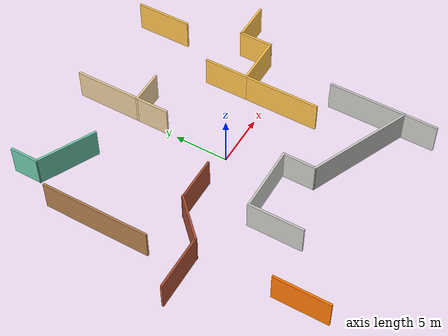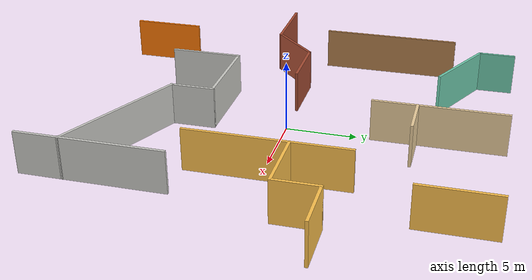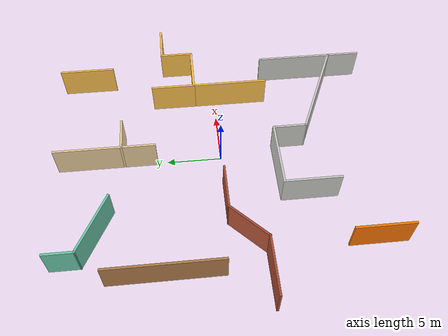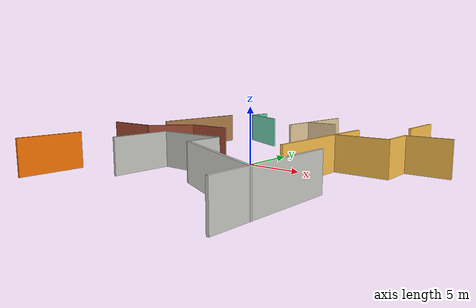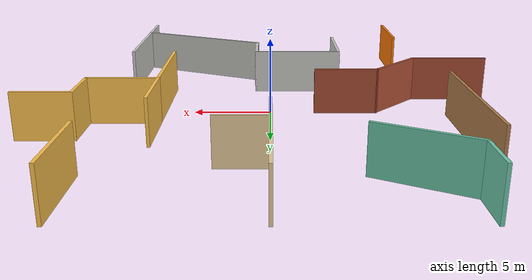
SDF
<?xml version='1.0'?>
<sdf version='1.7'>
  <model name='Maze30'>
    <pose>0 0 0 0 -0 0</pose>
    <link name='Wall_11'>
      <collision name='Wall_11_Collision'>
        <geometry>
          <box>
            <size>5.79017 0.2 3</size>
          </box>
        </geometry>
        <pose>0 0 1.5 0 -0 0</pose>
      </collision>
      <visual name='Wall_11_Visual'>
        <pose>0 0 1.5 0 -0 0</pose>
        <geometry>
          <box>
            <size>5.79017 0.2 3</size>
          </box>
        </geometry>
        <material>
          <script>
            <uri>file://media/materials/scripts/gazebo.material</uri>
            <name>Gazebo/Grey</name>
          </script>
          <ambient>0.435294 0.796078 0.67451 1</ambient>
        </material>
        <meta>
          <layer>0</layer>
        </meta>
      </visual>
      <pose>-7.5 11.25 0 0 -0 -0.463648</pose>
    </link>
    <link name='Wall_13'>
      <collision name='Wall_13_Collision'>
        <geometry>
          <box>
            <size>5.2 0.2 3</size>
          </box>
        </geometry>
        <pose>0 0 1.5 0 -0 0</pose>
      </collision>
      <visual name='Wall_13_Visual'>
        <pose>0 0 1.5 0 -0 0</pose>
        <geometry>
          <box>
            <size>5.2 0.2 3</size>
          </box>
        </geometry>
        <material>
          <script>
            <uri>file://media/materials/scripts/gazebo.material</uri>
            <name>Gazebo/Grey</name>
          </script>
          <ambient>0.996078 0.47451 0.0196078 1</ambient>
        </material>
        <meta>
          <layer>0</layer>
        </meta>
      </visual>
      <pose>-10 -12.5 0 0 -0 -1.5708</pose>
    </link>
    <link name='Wall_15'>
      <collision name='Wall_15_Collision'>
        <geometry>
          <box>
            <size>10.0489 0.2 3</size>
          </box>
        </geometry>
        <pose>0 0 1.5 0 -0 0</pose>
      </collision>
      <visual name='Wall_15_Visual'>
        <pose>0 0 1.5 0 -0 0</pose>
        <geometry>
          <box>
            <size>10.0489 0.2 3</size>
          </box>
        </geometry>
        <material>
          <script>
            <uri>file://media/materials/scripts/gazebo.material</uri>
            <name>Gazebo/CeilingTiled</name>
          </script>
          <ambient>0.760784 0.662745 0.627451 1</ambient>
        </material>
        <meta>
          <layer>0</layer>
        </meta>
      </visual>
      <pose>5.5 -10 0 0 -0 -0.418224</pose>
    </link>
    <link name='Wall_16'>
      <collision name='Wall_16_Collision'>
        <geometry>
          <box>
            <size>3.2 0.2 3</size>
          </box>
        </geometry>
        <pose>0 0 1.5 0 -0 0</pose>
      </collision>
      <visual name='Wall_16_Visual'>
        <pose>0 0 1.5 0 -0 0</pose>
        <geometry>
          <box>
            <size>3.2 0.2 3</size>
          </box>
        </geometry>
        <material>
          <script>
            <uri>file://media/materials/scripts/gazebo.material</uri>
            <name>Gazebo/CeilingTiled</name>
          </script>
          <ambient>0.760784 0.662745 0.627451 1</ambient>
        </material>
        <meta>
          <layer>0</layer>
        </meta>
      </visual>
      <pose>10 -13.5 0 0 -0 -1.5708</pose>
    </link>
    <link name='Wall_18'>
      <collision name='Wall_18_Collision'>
        <geometry>
          <box>
            <size>4.2 0.2 3</size>
          </box>
        </geometry>
        <pose>0 0 1.5 0 -0 0</pose>
      </collision>
      <visual name='Wall_18_Visual'>
        <pose>0 0 1.5 0 -0 0</pose>
        <geometry>
          <box>
            <size>4.2 0.2 3</size>
          </box>
        </geometry>
        <material>
          <script>
            <uri>file://media/materials/scripts/gazebo.material</uri>
            <name>Gazebo/Grey</name>
          </script>
          <ambient>1 0.764706 0.305882 1</ambient>
        </material>
        <meta>
          <layer>0</layer>
        </meta>
      </visual>
      <pose>7 4 0 0 -0 -1.5708</pose>
    </link>
    <link name='Wall_19'>
      <collision name='Wall_19_Collision'>
        <geometry>
          <box>
            <size>4.7 0.2 3</size>
          </box>
        </geometry>
        <pose>0 0 1.5 0 -0 0</pose>
      </collision>
      <visual name='Wall_19_Visual'>
        <pose>0 0 1.5 0 -0 0</pose>
        <geometry>
          <box>
            <size>4.7 0.2 3</size>
          </box>
        </geometry>
        <material>
          <script>
            <uri>file://media/materials/scripts/gazebo.material</uri>
            <name>Gazebo/Grey</name>
          </script>
          <ambient>1 0.764706 0.305882 1</ambient>
        </material>
        <meta>
          <layer>0</layer>
        </meta>
      </visual>
      <pose>9.25 2 0 0 -0 0</pose>
    </link>
    <link name='Wall_20'>
      <collision name='Wall_20_Collision'>
        <geometry>
          <box>
            <size>3.2 0.2 3</size>
          </box>
        </geometry>
        <pose>0 0 1.5 0 -0 0</pose>
      </collision>
      <visual name='Wall_20_Visual'>
        <pose>0 0 1.5 0 -0 0</pose>
        <geometry>
          <box>
            <size>3.2 0.2 3</size>
          </box>
        </geometry>
        <material>
          <script>
            <uri>file://media/materials/scripts/gazebo.material</uri>
            <name>Gazebo/Grey</name>
          </script>
          <ambient>1 0.764706 0.305882 1</ambient>
        </material>
        <meta>
          <layer>0</layer>
        </meta>
      </visual>
      <pose>11.5 3.5 0 0 -0 1.5708</pose>
    </link>
    <link name='Wall_21'>
      <collision name='Wall_21_Collision'>
        <geometry>
          <box>
            <size>3.7 0.2 3</size>
          </box>
        </geometry>
        <pose>0 0 1.5 0 -0 0</pose>
      </collision>
      <visual name='Wall_21_Visual'>
        <pose>0 0 1.5 0 -0 0</pose>
        <geometry>
          <box>
            <size>3.7 0.2 3</size>
          </box>
        </geometry>
        <material>
          <script>
            <uri>file://media/materials/scripts/gazebo.material</uri>
            <name>Gazebo/Grey</name>
          </script>
          <ambient>1 0.764706 0.305882 1</ambient>
        </material>
        <meta>
          <layer>0</layer>
        </meta>
      </visual>
      <pose>13.25 5 0 0 -0 0</pose>
    </link>
    <link name='Wall_23'>
      <collision name='Wall_23_Collision'>
        <geometry>
          <box>
            <size>9.2 0.2 3</size>
          </box>
        </geometry>
        <pose>0 0 1.5 0 -0 0</pose>
      </collision>
      <visual name='Wall_23_Visual'>
        <pose>0 0 1.5 0 -0 0</pose>
        <geometry>
          <box>
            <size>9.2 0.2 3</size>
          </box>
        </geometry>
        <material>
          <script>
            <uri>file://media/materials/scripts/gazebo.material</uri>
            <name>Gazebo/Grey</name>
          </script>
          <ambient>0.921569 0.807843 0.615686 1</ambient>
        </material>
        <meta>
          <layer>0</layer>
        </meta>
      </visual>
      <pose>0 10.5 0 0 -0 1.5708</pose>
    </link>
    <link name='Wall_25'>
      <collision name='Wall_25_Collision'>
        <geometry>
          <box>
            <size>3.2 0.2 3</size>
          </box>
        </geometry>
        <pose>0 0 1.5 0 -0 0</pose>
      </collision>
      <visual name='Wall_25_Visual'>
        <pose>0 0 1.5 0 -0 0</pose>
        <geometry>
          <box>
            <size>3.2 0.2 3</size>
          </box>
        </geometry>
        <material>
          <script>
            <uri>file://media/materials/scripts/gazebo.material</uri>
            <name>Gazebo/Grey</name>
          </script>
          <ambient>0.921569 0.807843 0.615686 1</ambient>
        </material>
        <meta>
          <layer>0</layer>
        </meta>
      </visual>
      <pose>1.5 9 0 0 -0 0</pose>
    </link>
    <link name='Wall_27'>
      <collision name='Wall_27_Collision'>
        <geometry>
          <box>
            <size>5.2 0.2 3</size>
          </box>
        </geometry>
        <pose>0 0 1.5 0 -0 0</pose>
      </collision>
      <visual name='Wall_27_Visual'>
        <pose>0 0 1.5 0 -0 0</pose>
        <geometry>
          <box>
            <size>5.2 0.2 3</size>
          </box>
        </geometry>
        <material>
          <script>
            <uri>file://media/materials/scripts/gazebo.material</uri>
            <name>Gazebo/Grey</name>
          </script>
          <ambient>1 0.764706 0.305882 1</ambient>
        </material>
        <meta>
          <layer>0</layer>
        </meta>
      </visual>
      <pose>10 12.5 0 0 -0 -1.5708</pose>
    </link>
    <link name='Wall_29'>
      <collision name='Wall_29_Collision'>
        <geometry>
          <box>
            <size>5.2 0.2 3</size>
          </box>
        </geometry>
        <pose>0 0 1.5 0 -0 0</pose>
      </collision>
      <visual name='Wall_29_Visual'>
        <pose>0 0 1.5 0 -0 0</pose>
        <geometry>
          <box>
            <size>5.2 0.2 3</size>
          </box>
        </geometry>
        <material>
          <script>
            <uri>file://media/materials/scripts/gazebo.material</uri>
            <name>Gazebo/CeilingTiled</name>
          </script>
          <ambient>0.760784 0.662745 0.627451 1</ambient>
        </material>
        <meta>
          <layer>0</layer>
        </meta>
      </visual>
      <pose>-5 -7.5 0 0 -0 1.5708</pose>
    </link>
    <link name='Wall_30'>
      <collision name='Wall_30_Collision'>
        <geometry>
          <box>
            <size>6.2 0.2 3</size>
          </box>
        </geometry>
        <pose>0 0 1.5 0 -0 0</pose>
      </collision>
      <visual name='Wall_30_Visual'>
        <pose>0 0 1.5 0 -0 0</pose>
        <geometry>
          <box>
            <size>6.2 0.2 3</size>
          </box>
        </geometry>
        <material>
          <script>
            <uri>file://media/materials/scripts/gazebo.material</uri>
            <name>Gazebo/CeilingTiled</name>
          </script>
          <ambient>0.760784 0.662745 0.627451 1</ambient>
        </material>
        <meta>
          <layer>0</layer>
        </meta>
      </visual>
      <pose>-2 -5 0 0 -0 0</pose>
    </link>
    <link name='Wall_31'>
      <collision name='Wall_31_Collision'>
        <geometry>
          <box>
            <size>3.2 0.2 3</size>
          </box>
        </geometry>
        <pose>0 0 1.5 0 -0 0</pose>
      </collision>
      <visual name='Wall_31_Visual'>
        <pose>0 0 1.5 0 -0 0</pose>
        <geometry>
          <box>
            <size>3.2 0.2 3</size>
          </box>
        </geometry>
        <material>
          <script>
            <uri>file://media/materials/scripts/gazebo.material</uri>
            <name>Gazebo/CeilingTiled</name>
          </script>
          <ambient>0.760784 0.662745 0.627451 1</ambient>
        </material>
        <meta>
          <layer>0</layer>
        </meta>
      </visual>
      <pose>1 -6.5 0 0 -0 -1.5708</pose>
    </link>
    <link name='Wall_33'>
      <collision name='Wall_33_Collision'>
        <geometry>
          <box>
            <size>10.05 0.2 3</size>
          </box>
        </geometry>
        <pose>0 0 1.5 0 -0 0</pose>
      </collision>
      <visual name='Wall_33_Visual'>
        <pose>0 0 1.5 0 -0 0</pose>
        <geometry>
          <box>
            <size>10.05 0.2 3</size>
          </box>
        </geometry>
        <material>
          <script>
            <uri>file://media/materials/scripts/gazebo.material</uri>
            <name>Gazebo/Wood</name>
          </script>
          <ambient>1 1 1 1</ambient>
        </material>
        <meta>
          <layer>0</layer>
        </meta>
      </visual>
      <pose>-11.671 5.53736 0 0 -0 -1.5708</pose>
    </link>
    <link name='Wall_35'>
      <collision name='Wall_35_Collision'>
        <geometry>
          <box>
            <size>7.2 0.2 3</size>
          </box>
        </geometry>
        <pose>0 0 1.5 0 -0 0</pose>
      </collision>
      <visual name='Wall_35_Visual'>
        <pose>0 0 1.5 0 -0 0</pose>
        <geometry>
          <box>
            <size>7.2 0.2 3</size>
          </box>
        </geometry>
        <material>
          <script>
            <uri>file://media/materials/scripts/gazebo.material</uri>
            <name>Gazebo/Grey</name>
          </script>
          <ambient>1 0.764706 0.305882 1</ambient>
        </material>
        <meta>
          <layer>0</layer>
        </meta>
      </visual>
      <pose>7 -1.5 0 0 -0 -1.5708</pose>
    </link>
    <link name='Wall_39'>
      <collision name='Wall_39_Collision'>
        <geometry>
          <box>
            <size>7.2 0.2 3</size>
          </box>
        </geometry>
        <pose>0 0 1.5 0 -0 0</pose>
      </collision>
      <visual name='Wall_39_Visual'>
        <pose>0 0 1.5 0 -0 0</pose>
        <geometry>
          <box>
            <size>7.2 0.2 3</size>
          </box>
        </geometry>
        <material>
          <script>
            <uri>file://media/materials/scripts/gazebo.material</uri>
            <name>Gazebo/CeilingTiled</name>
          </script>
          <ambient>0.760784 0.662745 0.627451 1</ambient>
        </material>
        <meta>
          <layer>0</layer>
        </meta>
      </visual>
      <pose>10 -8.5 0 0 -0 1.5708</pose>
    </link>
    <link name='Wall_4'>
      <collision name='Wall_4_Collision'>
        <geometry>
          <box>
            <size>5.2 0.2 3</size>
          </box>
        </geometry>
        <pose>0 0 1.5 0 -0 0</pose>
      </collision>
      <visual name='Wall_4_Visual'>
        <pose>0 0 1.5 0 -0 0</pose>
        <geometry>
          <box>
            <size>5.2 0.2 3</size>
          </box>
        </geometry>
        <material>
          <script>
            <uri>file://media/materials/scripts/gazebo.material</uri>
            <name>Gazebo/Bricks</name>
          </script>
          <ambient>1 1 1 1</ambient>
        </material>
        <meta>
          <layer>0</layer>
        </meta>
      </visual>
      <pose>-12.5 -3 0 0 -0 0</pose>
    </link>
    <link name='Wall_6'>
      <collision name='Wall_6_Collision'>
        <geometry>
          <box>
            <size>4.44264 0.2 3</size>
          </box>
        </geometry>
        <pose>0 0 1.5 0 -0 0</pose>
      </collision>
      <visual name='Wall_6_Visual'>
        <pose>0 0 1.5 0 -0 0</pose>
        <geometry>
          <box>
            <size>4.44264 0.2 3</size>
          </box>
        </geometry>
        <material>
          <script>
            <uri>file://media/materials/scripts/gazebo.material</uri>
            <name>Gazebo/Bricks</name>
          </script>
          <ambient>1 1 1 1</ambient>
        </material>
        <meta>
          <layer>0</layer>
        </meta>
      </visual>
      <pose>-8.5 -1.5 0 0 -0 0.785398</pose>
    </link>
    <link name='Wall_7'>
      <collision name='Wall_7_Collision'>
        <geometry>
          <box>
            <size>4.2 0.2 3</size>
          </box>
        </geometry>
        <pose>0 0 1.5 0 -0 0</pose>
      </collision>
      <visual name='Wall_7_Visual'>
        <pose>0 0 1.5 0 -0 0</pose>
        <geometry>
          <box>
            <size>4.2 0.2 3</size>
          </box>
        </geometry>
        <material>
          <script>
            <uri>file://media/materials/scripts/gazebo.material</uri>
            <name>Gazebo/Bricks</name>
          </script>
          <ambient>1 1 1 1</ambient>
        </material>
        <meta>
          <layer>0</layer>
        </meta>
      </visual>
      <pose>-5 0 0 0 -0 0</pose>
    </link>
    <link name='Wall_9'>
      <collision name='Wall_9_Collision'>
        <geometry>
          <box>
            <size>2.7 0.2 3</size>
          </box>
        </geometry>
        <pose>0 0 1.5 0 -0 0</pose>
      </collision>
      <visual name='Wall_9_Visual'>
        <pose>0 0 1.5 0 -0 0</pose>
        <geometry>
          <box>
            <size>2.7 0.2 3</size>
          </box>
        </geometry>
        <material>
          <script>
            <uri>file://media/materials/scripts/gazebo.material</uri>
            <name>Gazebo/Grey</name>
          </script>
          <ambient>0.435294 0.796078 0.67451 1</ambient>
        </material>
        <meta>
          <layer>0</layer>
        </meta>
      </visual>
      <pose>-10 13.75 0 0 -0 1.5708</pose>
    </link>
    <static>1</static>
  </model>
</sdf>
